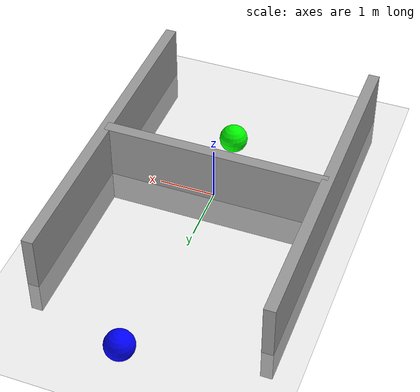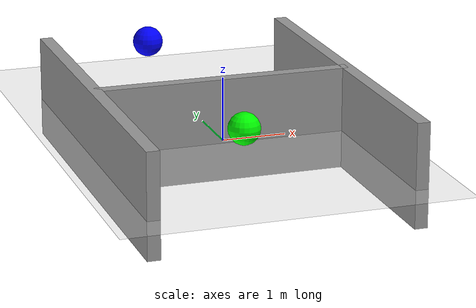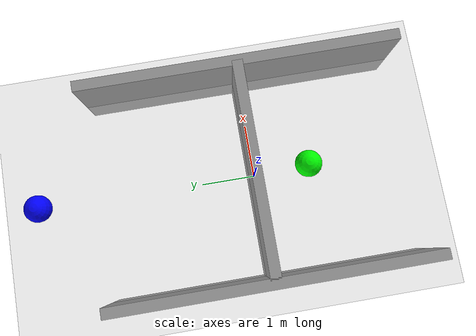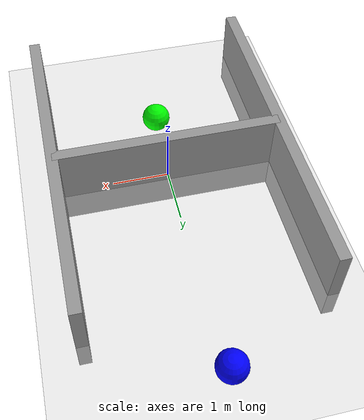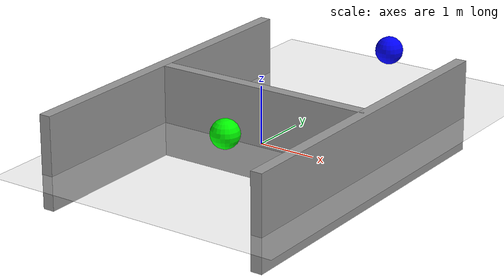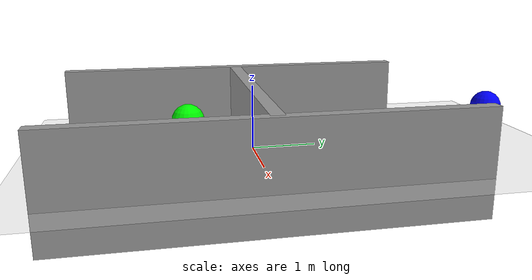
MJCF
<mujoco model="pointmaze-impasse">
	<option timestep="0.01" />
	<compiler angle="radian" />

	<worldbody>

		<!-- Floor -->
		<geom name="floor" type="plane" size="0 0 0.1" rgba="0.8 0.8 0.8 1" />

		<!-- Walls -->
		<geom name="bwall" type="box" size="2 0.1 0.8" pos="0 0 0.2" rgba="0.6 0.6 0.6 1" />
		<geom name="lwall" type="box" size="0.1 3 0.8" pos="-2 0 0.2" rgba="0.6 0.6 0.6 1" />
		<geom name="rwall" type="box" size="0.1 3 0.8" pos="2 0 0.2" rgba="0.6 0.6 0.6 1" />

		<!-- Points -->
		<geom name="goal" type="sphere" size="0.25" pos="0 -1 0.5" rgba="0 1 0 1" />

		<body name="agent" pos="0 4 0.5">
			<geom name="agent_body" type="sphere" size="0.25" rgba="0 0 1 1" />
			<joint name="x_joint" type="slide" axis="1 0 0" />
			<joint name="y_joint" type="slide" axis="0 1 0" />

		</body>

	</worldbody>

	<actuator>
		<motor name="x_motor" joint="x_joint" ctrlrange="-1 1" />
		<motor name="y_motor" joint="y_joint" ctrlrange="-1 1" />
	</actuator>

</mujoco>
